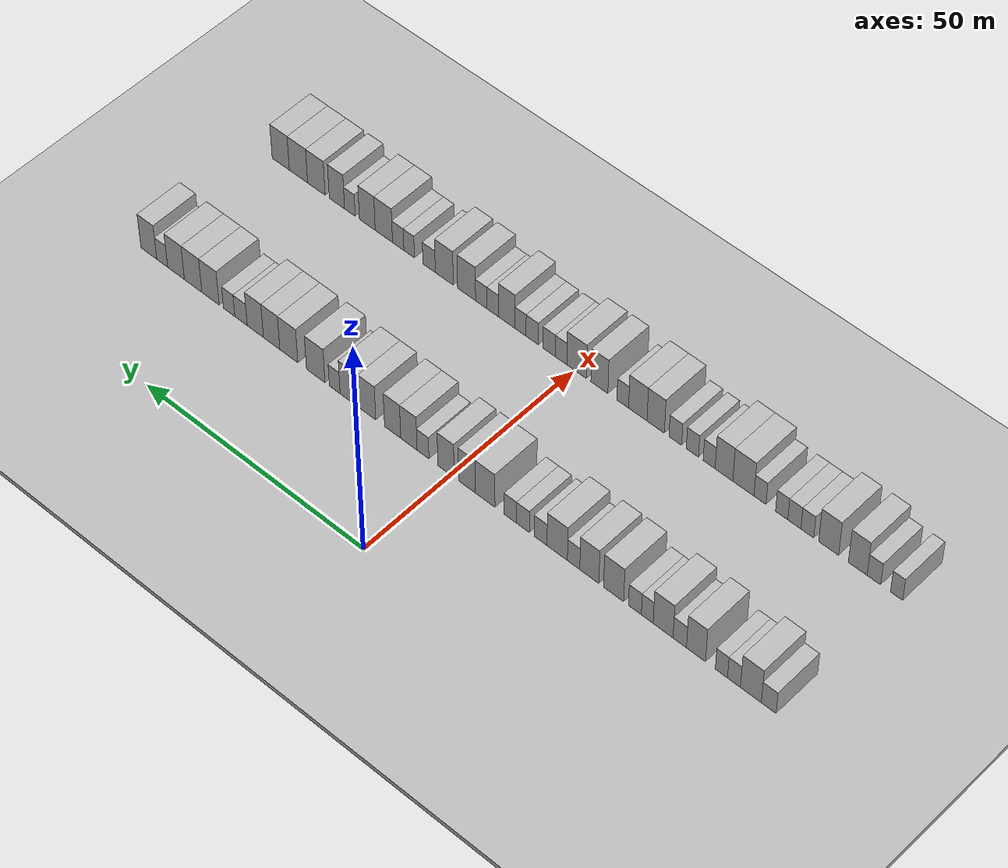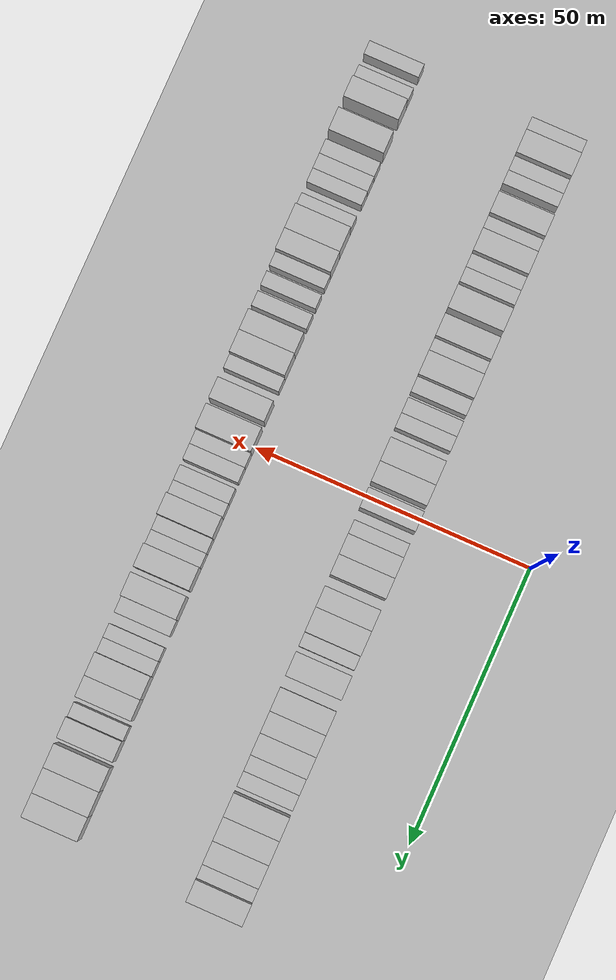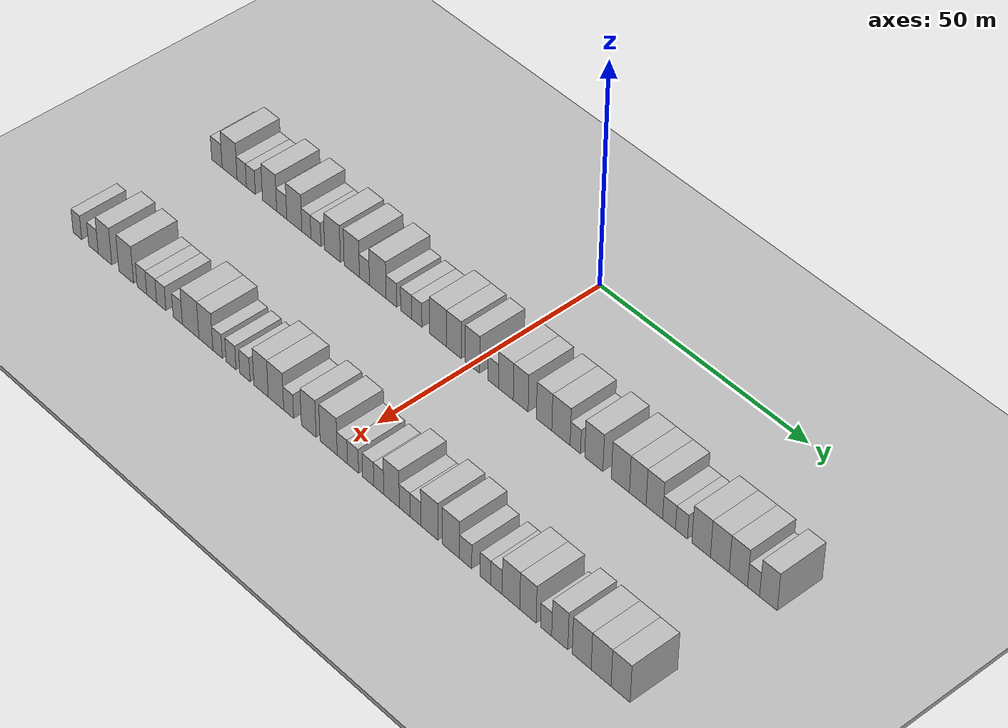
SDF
<sdf version="1.6">
 <world name="default">
  <include><name>ground_plane_1</name><uri>model://HANNAS_ground_plane</uri></include>
  <include>
   <name>ground_plane_2</name>
   <uri>model://HANNAS_ground_plane</uri>
   <pose>100 0 0  0 0 0</pose>
  </include>
  <model name="building_40">
   <static>1</static>
   <pose>25.0000 -67.4504 0 0.000000 0.000000 0.000000</pose>
   <link name="link">
    <pose>0 0 3.00 0 0 0</pose>
    <collision name="collision"><geometry><box><size>10.0000 2.9631 6.0000</size></box></geometry></collision>
    <visual name="visual">
     <cast_shadows>0</cast_shadows>
     <geometry><box><size>10.0000 2.9631 6.0000</size></box></geometry>
     <material>
      <script>
       <uri>model://HANNAS_wall/materials/scripts</uri>
       <uri>model://HANNAS_wall/materials/textures</uri>
       <name>vrc/HANNAS_wall</name>
      </script>
     </material>
    </visual>
   </link>
  </model>
  <model name="building_41">
   <static>1</static>
   <pose>25.0000 -63.8523 0 0.000000 0.000000 0.000000</pose>
   <link name="link">
    <pose>0 0 4.50 0 0 0</pose>
    <collision name="collision"><geometry><box><size>10.0000 4.2330 9.0000</size></box></geometry></collision>
    <visual name="visual">
     <cast_shadows>0</cast_shadows>
     <geometry><box><size>10.0000 4.2330 9.0000</size></box></geometry>
     <material>
      <script>
       <uri>model://HANNAS_wall/materials/scripts</uri>
       <uri>model://HANNAS_wall/materials/textures</uri>
       <name>vrc/HANNAS_wall</name>
      </script>
     </material>
    </visual>
   </link>
  </model>
  <model name="building_42">
   <static>1</static>
   <pose>25.0000 -60.4268 0 0.000000 0.000000 0.000000</pose>
   <link name="link">
    <pose>0 0 3.00 0 0 0</pose>
    <collision name="collision"><geometry><box><size>10.0000 2.6180 6.0000</size></box></geometry></collision>
    <visual name="visual">
     <cast_shadows>0</cast_shadows>
     <geometry><box><size>10.0000 2.6180 6.0000</size></box></geometry>
     <material>
      <script>
       <uri>model://HANNAS_wall/materials/scripts</uri>
       <uri>model://HANNAS_wall/materials/textures</uri>
       <name>vrc/HANNAS_wall</name>
      </script>
     </material>
    </visual>
   </link>
  </model>
  <model name="building_43">
   <static>1</static>
   <pose>25.0000 -57.8759 0 0.000000 0.000000 0.000000</pose>
   <link name="link">
    <pose>0 0 3.00 0 0 0</pose>
    <collision name="collision"><geometry><box><size>10.0000 2.4838 6.0000</size></box></geometry></collision>
    <visual name="visual">
     <cast_shadows>0</cast_shadows>
     <geometry><box><size>10.0000 2.4838 6.0000</size></box></geometry>
     <material>
      <script>
       <uri>model://HANNAS_wall/materials/scripts</uri>
       <uri>model://HANNAS_wall/materials/textures</uri>
       <name>vrc/HANNAS_wall</name>
      </script>
     </material>
    </visual>
   </link>
  </model>
  <model name="building_44">
   <static>1</static>
   <pose>25.0000 -52.6735 0 0.000000 0.000000 0.000000</pose>
   <link name="link">
    <pose>0 0 4.50 0 0 0</pose>
    <collision name="collision"><geometry><box><size>10.0000 3.9210 9.0000</size></box></geometry></collision>
    <visual name="visual">
     <cast_shadows>0</cast_shadows>
     <geometry><box><size>10.0000 3.9210 9.0000</size></box></geometry>
     <material>
      <script>
       <uri>model://HANNAS_wall/materials/scripts</uri>
       <uri>model://HANNAS_wall/materials/textures</uri>
       <name>vrc/HANNAS_wall</name>
      </script>
     </material>
    </visual>
   </link>
  </model>
  <model name="building_45">
   <static>1</static>
   <pose>25.0000 -49.3237 0 0.000000 0.000000 0.000000</pose>
   <link name="link">
    <pose>0 0 3.00 0 0 0</pose>
    <collision name="collision"><geometry><box><size>10.0000 2.7787 6.0000</size></box></geometry></collision>
    <visual name="visual">
     <cast_shadows>0</cast_shadows>
     <geometry><box><size>10.0000 2.7787 6.0000</size></box></geometry>
     <material>
      <script>
       <uri>model://HANNAS_wall/materials/scripts</uri>
       <uri>model://HANNAS_wall/materials/textures</uri>
       <name>vrc/HANNAS_wall</name>
      </script>
     </material>
    </visual>
   </link>
  </model>
  <model name="building_46">
   <static>1</static>
   <pose>25.0000 -45.8711 0 0.000000 0.000000 0.000000</pose>
   <link name="link">
    <pose>0 0 4.50 0 0 0</pose>
    <collision name="collision"><geometry><box><size>10.0000 4.1265 9.0000</size></box></geometry></collision>
    <visual name="visual">
     <cast_shadows>0</cast_shadows>
     <geometry><box><size>10.0000 4.1265 9.0000</size></box></geometry>
     <material>
      <script>
       <uri>model://HANNAS_wall/materials/scripts</uri>
       <uri>model://HANNAS_wall/materials/textures</uri>
       <name>vrc/HANNAS_wall</name>
      </script>
     </material>
    </visual>
   </link>
  </model>
  <model name="building_47">
   <static>1</static>
   <pose>25.0000 -42.5730 0 0.000000 0.000000 0.000000</pose>
   <link name="link">
    <pose>0 0 3.00 0 0 0</pose>
    <collision name="collision"><geometry><box><size>10.0000 2.4697 6.0000</size></box></geometry></collision>
    <visual name="visual">
     <cast_shadows>0</cast_shadows>
     <geometry><box><size>10.0000 2.4697 6.0000</size></box></geometry>
     <material>
      <script>
       <uri>model://HANNAS_wall/materials/scripts</uri>
       <uri>model://HANNAS_wall/materials/textures</uri>
       <name>vrc/HANNAS_wall</name>
      </script>
     </material>
    </visual>
   </link>
  </model>
  <model name="building_48">
   <static>1</static>
   <pose>25.0000 -39.9853 0 0.000000 0.000000 0.000000</pose>
   <link name="link">
    <pose>0 0 3.00 0 0 0</pose>
    <collision name="collision"><geometry><box><size>10.0000 2.7059 6.0000</size></box></geometry></collision>
    <visual name="visual">
     <cast_shadows>0</cast_shadows>
     <geometry><box><size>10.0000 2.7059 6.0000</size></box></geometry>
     <material>
      <script>
       <uri>model://HANNAS_wall/materials/scripts</uri>
       <uri>model://HANNAS_wall/materials/textures</uri>
       <name>vrc/HANNAS_wall</name>
      </script>
     </material>
    </visual>
   </link>
  </model>
  <model name="building_49">
   <static>1</static>
   <pose>25.0000 -35.5125 0 0.000000 0.000000 0.000000</pose>
   <link name="link">
    <pose>0 0 4.50 0 0 0</pose>
    <collision name="collision"><geometry><box><size>10.0000 4.2397 9.0000</size></box></geometry></collision>
    <visual name="visual">
     <cast_shadows>0</cast_shadows>
     <geometry><box><size>10.0000 4.2397 9.0000</size></box></geometry>
     <material>
      <script>
       <uri>model://HANNAS_wall/materials/scripts</uri>
       <uri>model://HANNAS_wall/materials/textures</uri>
       <name>vrc/HANNAS_wall</name>
      </script>
     </material>
    </visual>
   </link>
  </model>
  <model name="building_50">
   <static>1</static>
   <pose>25.0000 -30.3605 0 0.000000 0.000000 0.000000</pose>
   <link name="link">
    <pose>0 0 4.50 0 0 0</pose>
    <collision name="collision"><geometry><box><size>10.0000 4.0643 9.0000</size></box></geometry></collision>
    <visual name="visual">
     <cast_shadows>0</cast_shadows>
     <geometry><box><size>10.0000 4.0643 9.0000</size></box></geometry>
     <material>
      <script>
       <uri>model://HANNAS_wall/materials/scripts</uri>
       <uri>model://HANNAS_wall/materials/textures</uri>
       <name>vrc/HANNAS_wall</name>
      </script>
     </material>
    </visual>
   </link>
  </model>
  <model name="building_51">
   <static>1</static>
   <pose>25.0000 -27.0049 0 0.000000 0.000000 0.000000</pose>
   <link name="link">
    <pose>0 0 3.00 0 0 0</pose>
    <collision name="collision"><geometry><box><size>10.0000 2.6468 6.0000</size></box></geometry></collision>
    <visual name="visual">
     <cast_shadows>0</cast_shadows>
     <geometry><box><size>10.0000 2.6468 6.0000</size></box></geometry>
     <material>
      <script>
       <uri>model://HANNAS_wall/materials/scripts</uri>
       <uri>model://HANNAS_wall/materials/textures</uri>
       <name>vrc/HANNAS_wall</name>
      </script>
     </material>
    </visual>
   </link>
  </model>
  <model name="building_52">
   <static>1</static>
   <pose>25.0000 -23.4937 0 0.000000 0.000000 0.000000</pose>
   <link name="link">
    <pose>0 0 4.50 0 0 0</pose>
    <collision name="collision"><geometry><box><size>10.0000 4.3756 9.0000</size></box></geometry></collision>
    <visual name="visual">
     <cast_shadows>0</cast_shadows>
     <geometry><box><size>10.0000 4.3756 9.0000</size></box></geometry>
     <material>
      <script>
       <uri>model://HANNAS_wall/materials/scripts</uri>
       <uri>model://HANNAS_wall/materials/textures</uri>
       <name>vrc/HANNAS_wall</name>
      </script>
     </material>
    </visual>
   </link>
  </model>
  <model name="building_53">
   <static>1</static>
   <pose>25.0000 -19.8978 0 0.000000 0.000000 0.000000</pose>
   <link name="link">
    <pose>0 0 3.00 0 0 0</pose>
    <collision name="collision"><geometry><box><size>10.0000 2.8161 6.0000</size></box></geometry></collision>
    <visual name="visual">
     <cast_shadows>0</cast_shadows>
     <geometry><box><size>10.0000 2.8161 6.0000</size></box></geometry>
     <material>
      <script>
       <uri>model://HANNAS_wall/materials/scripts</uri>
       <uri>model://HANNAS_wall/materials/textures</uri>
       <name>vrc/HANNAS_wall</name>
      </script>
     </material>
    </visual>
   </link>
  </model>
  <model name="building_54">
   <static>1</static>
   <pose>25.0000 -16.0875 0 0.000000 0.000000 0.000000</pose>
   <link name="link">
    <pose>0 0 3.00 0 0 0</pose>
    <collision name="collision"><geometry><box><size>10.0000 2.8045 6.0000</size></box></geometry></collision>
    <visual name="visual">
     <cast_shadows>0</cast_shadows>
     <geometry><box><size>10.0000 2.8045 6.0000</size></box></geometry>
     <material>
      <script>
       <uri>model://HANNAS_wall/materials/scripts</uri>
       <uri>model://HANNAS_wall/materials/textures</uri>
       <name>vrc/HANNAS_wall</name>
      </script>
     </material>
    </visual>
   </link>
  </model>
  <model name="building_55">
   <static>1</static>
   <pose>25.0000 -13.3362 0 0.000000 0.000000 0.000000</pose>
   <link name="link">
    <pose>0 0 3.00 0 0 0</pose>
    <collision name="collision"><geometry><box><size>10.0000 2.6982 6.0000</size></box></geometry></collision>
    <visual name="visual">
     <cast_shadows>0</cast_shadows>
     <geometry><box><size>10.0000 2.6982 6.0000</size></box></geometry>
     <material>
      <script>
       <uri>model://HANNAS_wall/materials/scripts</uri>
       <uri>model://HANNAS_wall/materials/textures</uri>
       <name>vrc/HANNAS_wall</name>
      </script>
     </material>
    </visual>
   </link>
  </model>
  <model name="building_56">
   <static>1</static>
   <pose>25.0000 -7.8339 0 0.000000 0.000000 0.000000</pose>
   <link name="link">
    <pose>0 0 4.50 0 0 0</pose>
    <collision name="collision"><geometry><box><size>10.0000 4.3064 9.0000</size></box></geometry></collision>
    <visual name="visual">
     <cast_shadows>0</cast_shadows>
     <geometry><box><size>10.0000 4.3064 9.0000</size></box></geometry>
     <material>
      <script>
       <uri>model://HANNAS_wall/materials/scripts</uri>
       <uri>model://HANNAS_wall/materials/textures</uri>
       <name>vrc/HANNAS_wall</name>
      </script>
     </material>
    </visual>
   </link>
  </model>
  <model name="building_57">
   <static>1</static>
   <pose>25.0000 -3.8198 0 0.000000 0.000000 0.000000</pose>
   <link name="link">
    <pose>0 0 4.50 0 0 0</pose>
    <collision name="collision"><geometry><box><size>10.0000 3.7216 9.0000</size></box></geometry></collision>
    <visual name="visual">
     <cast_shadows>0</cast_shadows>
     <geometry><box><size>10.0000 3.7216 9.0000</size></box></geometry>
     <material>
      <script>
       <uri>model://HANNAS_wall/materials/scripts</uri>
       <uri>model://HANNAS_wall/materials/textures</uri>
       <name>vrc/HANNAS_wall</name>
      </script>
     </material>
    </visual>
   </link>
  </model>
  <model name="building_58">
   <static>1</static>
   <pose>25.0000 0.8615 0 0.000000 0.000000 0.000000</pose>
   <link name="link">
    <pose>0 0 4.50 0 0 0</pose>
    <collision name="collision"><geometry><box><size>10.0000 3.6410 9.0000</size></box></geometry></collision>
    <visual name="visual">
     <cast_shadows>0</cast_shadows>
     <geometry><box><size>10.0000 3.6410 9.0000</size></box></geometry>
     <material>
      <script>
       <uri>model://HANNAS_wall/materials/scripts</uri>
       <uri>model://HANNAS_wall/materials/textures</uri>
       <name>vrc/HANNAS_wall</name>
      </script>
     </material>
    </visual>
   </link>
  </model>
  <model name="building_59">
   <static>1</static>
   <pose>25.0000 6.0188 0 0.000000 0.000000 0.000000</pose>
   <link name="link">
    <pose>0 0 3.00 0 0 0</pose>
    <collision name="collision"><geometry><box><size>10.0000 2.6737 6.0000</size></box></geometry></collision>
    <visual name="visual">
     <cast_shadows>0</cast_shadows>
     <geometry><box><size>10.0000 2.6737 6.0000</size></box></geometry>
     <material>
      <script>
       <uri>model://HANNAS_wall/materials/scripts</uri>
       <uri>model://HANNAS_wall/materials/textures</uri>
       <name>vrc/HANNAS_wall</name>
      </script>
     </material>
    </visual>
   </link>
  </model>
  <model name="building_60">
   <static>1</static>
   <pose>25.0000 9.2011 0 0.000000 0.000000 0.000000</pose>
   <link name="link">
    <pose>0 0 4.50 0 0 0</pose>
    <collision name="collision"><geometry><box><size>10.0000 3.6910 9.0000</size></box></geometry></collision>
    <visual name="visual">
     <cast_shadows>0</cast_shadows>
     <geometry><box><size>10.0000 3.6910 9.0000</size></box></geometry>
     <material>
      <script>
       <uri>model://HANNAS_wall/materials/scripts</uri>
       <uri>model://HANNAS_wall/materials/textures</uri>
       <name>vrc/HANNAS_wall</name>
      </script>
     </material>
    </visual>
   </link>
  </model>
  <model name="building_61">
   <static>1</static>
   <pose>25.0000 12.8817 0 0.000000 0.000000 0.000000</pose>
   <link name="link">
    <pose>0 0 4.50 0 0 0</pose>
    <collision name="collision"><geometry><box><size>10.0000 3.6702 9.0000</size></box></geometry></collision>
    <visual name="visual">
     <cast_shadows>0</cast_shadows>
     <geometry><box><size>10.0000 3.6702 9.0000</size></box></geometry>
     <material>
      <script>
       <uri>model://HANNAS_wall/materials/scripts</uri>
       <uri>model://HANNAS_wall/materials/textures</uri>
       <name>vrc/HANNAS_wall</name>
      </script>
     </material>
    </visual>
   </link>
  </model>
  <model name="building_62">
   <static>1</static>
   <pose>25.0000 18.6023 0 0.000000 0.000000 0.000000</pose>
   <link name="link">
    <pose>0 0 4.50 0 0 0</pose>
    <collision name="collision"><geometry><box><size>10.0000 3.7709 9.0000</size></box></geometry></collision>
    <visual name="visual">
     <cast_shadows>0</cast_shadows>
     <geometry><box><size>10.0000 3.7709 9.0000</size></box></geometry>
     <material>
      <script>
       <uri>model://HANNAS_wall/materials/scripts</uri>
       <uri>model://HANNAS_wall/materials/textures</uri>
       <name>vrc/HANNAS_wall</name>
      </script>
     </material>
    </visual>
   </link>
  </model>
  <model name="building_63">
   <static>1</static>
   <pose>25.0000 22.7025 0 0.000000 0.000000 0.000000</pose>
   <link name="link">
    <pose>0 0 4.50 0 0 0</pose>
    <collision name="collision"><geometry><box><size>10.0000 4.4295 9.0000</size></box></geometry></collision>
    <visual name="visual">
     <cast_shadows>0</cast_shadows>
     <geometry><box><size>10.0000 4.4295 9.0000</size></box></geometry>
     <material>
      <script>
       <uri>model://HANNAS_wall/materials/scripts</uri>
       <uri>model://HANNAS_wall/materials/textures</uri>
       <name>vrc/HANNAS_wall</name>
      </script>
     </material>
    </visual>
   </link>
  </model>
  <model name="building_64">
   <static>1</static>
   <pose>25.0000 26.1662 0 0.000000 0.000000 0.000000</pose>
   <link name="link">
    <pose>0 0 3.00 0 0 0</pose>
    <collision name="collision"><geometry><box><size>10.0000 2.4980 6.0000</size></box></geometry></collision>
    <visual name="visual">
     <cast_shadows>0</cast_shadows>
     <geometry><box><size>10.0000 2.4980 6.0000</size></box></geometry>
     <material>
      <script>
       <uri>model://HANNAS_wall/materials/scripts</uri>
       <uri>model://HANNAS_wall/materials/textures</uri>
       <name>vrc/HANNAS_wall</name>
      </script>
     </material>
    </visual>
   </link>
  </model>
  <model name="building_65">
   <static>1</static>
   <pose>25.0000 30.5811 0 0.000000 0.000000 0.000000</pose>
   <link name="link">
    <pose>0 0 4.50 0 0 0</pose>
    <collision name="collision"><geometry><box><size>10.0000 4.3316 9.0000</size></box></geometry></collision>
    <visual name="visual">
     <cast_shadows>0</cast_shadows>
     <geometry><box><size>10.0000 4.3316 9.0000</size></box></geometry>
     <material>
      <script>
       <uri>model://HANNAS_wall/materials/scripts</uri>
       <uri>model://HANNAS_wall/materials/textures</uri>
       <name>vrc/HANNAS_wall</name>
      </script>
     </material>
    </visual>
   </link>
  </model>
  <model name="building_66">
   <static>1</static>
   <pose>25.0000 36.8752 0 0.000000 0.000000 0.000000</pose>
   <link name="link">
    <pose>0 0 4.50 0 0 0</pose>
    <collision name="collision"><geometry><box><size>10.0000 4.2566 9.0000</size></box></geometry></collision>
    <visual name="visual">
     <cast_shadows>0</cast_shadows>
     <geometry><box><size>10.0000 4.2566 9.0000</size></box></geometry>
     <material>
      <script>
       <uri>model://HANNAS_wall/materials/scripts</uri>
       <uri>model://HANNAS_wall/materials/textures</uri>
       <name>vrc/HANNAS_wall</name>
      </script>
     </material>
    </visual>
   </link>
  </model>
  <model name="building_67">
   <static>1</static>
   <pose>25.0000 40.9402 0 0.000000 0.000000 0.000000</pose>
   <link name="link">
    <pose>0 0 4.50 0 0 0</pose>
    <collision name="collision"><geometry><box><size>10.0000 3.8733 9.0000</size></box></geometry></collision>
    <visual name="visual">
     <cast_shadows>0</cast_shadows>
     <geometry><box><size>10.0000 3.8733 9.0000</size></box></geometry>
     <material>
      <script>
       <uri>model://HANNAS_wall/materials/scripts</uri>
       <uri>model://HANNAS_wall/materials/textures</uri>
       <name>vrc/HANNAS_wall</name>
      </script>
     </material>
    </visual>
   </link>
  </model>
  <model name="building_68">
   <static>1</static>
   <pose>25.0000 44.8084 0 0.000000 0.000000 0.000000</pose>
   <link name="link">
    <pose>0 0 4.50 0 0 0</pose>
    <collision name="collision"><geometry><box><size>10.0000 3.8630 9.0000</size></box></geometry></collision>
    <visual name="visual">
     <cast_shadows>0</cast_shadows>
     <geometry><box><size>10.0000 3.8630 9.0000</size></box></geometry>
     <material>
      <script>
       <uri>model://HANNAS_wall/materials/scripts</uri>
       <uri>model://HANNAS_wall/materials/textures</uri>
       <name>vrc/HANNAS_wall</name>
      </script>
     </material>
    </visual>
   </link>
  </model>
  <model name="building_69">
   <static>1</static>
   <pose>25.0000 48.2210 0 0.000000 0.000000 0.000000</pose>
   <link name="link">
    <pose>0 0 3.00 0 0 0</pose>
    <collision name="collision"><geometry><box><size>10.0000 2.9623 6.0000</size></box></geometry></collision>
    <visual name="visual">
     <cast_shadows>0</cast_shadows>
     <geometry><box><size>10.0000 2.9623 6.0000</size></box></geometry>
     <material>
      <script>
       <uri>model://HANNAS_wall/materials/scripts</uri>
       <uri>model://HANNAS_wall/materials/textures</uri>
       <name>vrc/HANNAS_wall</name>
      </script>
     </material>
    </visual>
   </link>
  </model>
  <model name="building_70">
   <static>1</static>
   <pose>25.0000 51.0767 0 0.000000 0.000000 0.000000</pose>
   <link name="link">
    <pose>0 0 3.00 0 0 0</pose>
    <collision name="collision"><geometry><box><size>10.0000 2.7492 6.0000</size></box></geometry></collision>
    <visual name="visual">
     <cast_shadows>0</cast_shadows>
     <geometry><box><size>10.0000 2.7492 6.0000</size></box></geometry>
     <material>
      <script>
       <uri>model://HANNAS_wall/materials/scripts</uri>
       <uri>model://HANNAS_wall/materials/textures</uri>
       <name>vrc/HANNAS_wall</name>
      </script>
     </material>
    </visual>
   </link>
  </model>
  <model name="building_71">
   <static>1</static>
   <pose>25.0000 55.5530 0 0.000000 0.000000 0.000000</pose>
   <link name="link">
    <pose>0 0 4.50 0 0 0</pose>
    <collision name="collision"><geometry><box><size>10.0000 4.2034 9.0000</size></box></geometry></collision>
    <visual name="visual">
     <cast_shadows>0</cast_shadows>
     <geometry><box><size>10.0000 4.2034 9.0000</size></box></geometry>
     <material>
      <script>
       <uri>model://HANNAS_wall/materials/scripts</uri>
       <uri>model://HANNAS_wall/materials/textures</uri>
       <name>vrc/HANNAS_wall</name>
      </script>
     </material>
    </visual>
   </link>
  </model>
  <model name="building_72">
   <static>1</static>
   <pose>25.0000 59.7783 0 0.000000 0.000000 0.000000</pose>
   <link name="link">
    <pose>0 0 4.50 0 0 0</pose>
    <collision name="collision"><geometry><box><size>10.0000 4.2473 9.0000</size></box></geometry></collision>
    <visual name="visual">
     <cast_shadows>0</cast_shadows>
     <geometry><box><size>10.0000 4.2473 9.0000</size></box></geometry>
     <material>
      <script>
       <uri>model://HANNAS_wall/materials/scripts</uri>
       <uri>model://HANNAS_wall/materials/textures</uri>
       <name>vrc/HANNAS_wall</name>
      </script>
     </material>
    </visual>
   </link>
  </model>
  <model name="building_73">
   <static>1</static>
   <pose>25.0000 63.9522 0 0.000000 0.000000 0.000000</pose>
   <link name="link">
    <pose>0 0 4.50 0 0 0</pose>
    <collision name="collision"><geometry><box><size>10.0000 4.1004 9.0000</size></box></geometry></collision>
    <visual name="visual">
     <cast_shadows>0</cast_shadows>
     <geometry><box><size>10.0000 4.1004 9.0000</size></box></geometry>
     <material>
      <script>
       <uri>model://HANNAS_wall/materials/scripts</uri>
       <uri>model://HANNAS_wall/materials/textures</uri>
       <name>vrc/HANNAS_wall</name>
      </script>
     </material>
    </visual>
   </link>
  </model>
  <model name="building_74">
   <static>1</static>
   <pose>25.0000 67.3389 0 0.000000 0.000000 0.000000</pose>
   <link name="link">
    <pose>0 0 3.00 0 0 0</pose>
    <collision name="collision"><geometry><box><size>10.0000 2.6730 6.0000</size></box></geometry></collision>
    <visual name="visual">
     <cast_shadows>0</cast_shadows>
     <geometry><box><size>10.0000 2.6730 6.0000</size></box></geometry>
     <material>
      <script>
       <uri>model://HANNAS_wall/materials/scripts</uri>
       <uri>model://HANNAS_wall/materials/textures</uri>
       <name>vrc/HANNAS_wall</name>
      </script>
     </material>
    </visual>
   </link>
  </model>
  <model name="building_75">
   <static>1</static>
   <pose>25.0000 70.6305 0 0.000000 0.000000 0.000000</pose>
   <link name="link">
    <pose>0 0 4.50 0 0 0</pose>
    <collision name="collision"><geometry><box><size>10.0000 3.9102 9.0000</size></box></geometry></collision>
    <visual name="visual">
     <cast_shadows>0</cast_shadows>
     <geometry><box><size>10.0000 3.9102 9.0000</size></box></geometry>
     <material>
      <script>
       <uri>model://HANNAS_wall/materials/scripts</uri>
       <uri>model://HANNAS_wall/materials/textures</uri>
       <name>vrc/HANNAS_wall</name>
      </script>
     </material>
    </visual>
   </link>
  </model>
  <model name="building_145">
   <static>1</static>
   <pose>55.0000 -68.5904 0 0.000000 0.000000 0.000000</pose>
   <link name="link">
    <pose>0 0 3.00 0 0 0</pose>
    <collision name="collision"><geometry><box><size>10.0000 2.4681 6.0000</size></box></geometry></collision>
    <visual name="visual">
     <cast_shadows>0</cast_shadows>
     <geometry><box><size>10.0000 2.4681 6.0000</size></box></geometry>
     <material>
      <script>
       <uri>model://HANNAS_wall/materials/scripts</uri>
       <uri>model://HANNAS_wall/materials/textures</uri>
       <name>vrc/HANNAS_wall</name>
      </script>
     </material>
    </visual>
   </link>
  </model>
  <model name="building_146">
   <static>1</static>
   <pose>55.0000 -63.9849 0 0.000000 0.000000 0.000000</pose>
   <link name="link">
    <pose>0 0 3.00 0 0 0</pose>
    <collision name="collision"><geometry><box><size>10.0000 2.7431 6.0000</size></box></geometry></collision>
    <visual name="visual">
     <cast_shadows>0</cast_shadows>
     <geometry><box><size>10.0000 2.7431 6.0000</size></box></geometry>
     <material>
      <script>
       <uri>model://HANNAS_wall/materials/scripts</uri>
       <uri>model://HANNAS_wall/materials/textures</uri>
       <name>vrc/HANNAS_wall</name>
      </script>
     </material>
    </visual>
   </link>
  </model>
  <model name="building_147">
   <static>1</static>
   <pose>55.0000 -60.6962 0 0.000000 0.000000 0.000000</pose>
   <link name="link">
    <pose>0 0 4.50 0 0 0</pose>
    <collision name="collision"><geometry><box><size>10.0000 3.8341 9.0000</size></box></geometry></collision>
    <visual name="visual">
     <cast_shadows>0</cast_shadows>
     <geometry><box><size>10.0000 3.8341 9.0000</size></box></geometry>
     <material>
      <script>
       <uri>model://HANNAS_wall/materials/scripts</uri>
       <uri>model://HANNAS_wall/materials/textures</uri>
       <name>vrc/HANNAS_wall</name>
      </script>
     </material>
    </visual>
   </link>
  </model>
  <model name="building_148">
   <static>1</static>
   <pose>55.0000 -54.7127 0 0.000000 0.000000 0.000000</pose>
   <link name="link">
    <pose>0 0 4.50 0 0 0</pose>
    <collision name="collision"><geometry><box><size>10.0000 4.1330 9.0000</size></box></geometry></collision>
    <visual name="visual">
     <cast_shadows>0</cast_shadows>
     <geometry><box><size>10.0000 4.1330 9.0000</size></box></geometry>
     <material>
      <script>
       <uri>model://HANNAS_wall/materials/scripts</uri>
       <uri>model://HANNAS_wall/materials/textures</uri>
       <name>vrc/HANNAS_wall</name>
      </script>
     </material>
    </visual>
   </link>
  </model>
  <model name="building_149">
   <static>1</static>
   <pose>55.0000 -50.3110 0 0.000000 0.000000 0.000000</pose>
   <link name="link">
    <pose>0 0 3.00 0 0 0</pose>
    <collision name="collision"><geometry><box><size>10.0000 2.6705 6.0000</size></box></geometry></collision>
    <visual name="visual">
     <cast_shadows>0</cast_shadows>
     <geometry><box><size>10.0000 2.6705 6.0000</size></box></geometry>
     <material>
      <script>
       <uri>model://HANNAS_wall/materials/scripts</uri>
       <uri>model://HANNAS_wall/materials/textures</uri>
       <name>vrc/HANNAS_wall</name>
      </script>
     </material>
    </visual>
   </link>
  </model>
  <model name="building_150">
   <static>1</static>
   <pose>55.0000 -47.6110 0 0.000000 0.000000 0.000000</pose>
   <link name="link">
    <pose>0 0 3.00 0 0 0</pose>
    <collision name="collision"><geometry><box><size>10.0000 2.7294 6.0000</size></box></geometry></collision>
    <visual name="visual">
     <cast_shadows>0</cast_shadows>
     <geometry><box><size>10.0000 2.7294 6.0000</size></box></geometry>
     <material>
      <script>
       <uri>model://HANNAS_wall/materials/scripts</uri>
       <uri>model://HANNAS_wall/materials/textures</uri>
       <name>vrc/HANNAS_wall</name>
      </script>
     </material>
    </visual>
   </link>
  </model>
  <model name="building_151">
   <static>1</static>
   <pose>55.0000 -44.9672 0 0.000000 0.000000 0.000000</pose>
   <link name="link">
    <pose>0 0 3.00 0 0 0</pose>
    <collision name="collision"><geometry><box><size>10.0000 2.5583 6.0000</size></box></geometry></collision>
    <visual name="visual">
     <cast_shadows>0</cast_shadows>
     <geometry><box><size>10.0000 2.5583 6.0000</size></box></geometry>
     <material>
      <script>
       <uri>model://HANNAS_wall/materials/scripts</uri>
       <uri>model://HANNAS_wall/materials/textures</uri>
       <name>vrc/HANNAS_wall</name>
      </script>
     </material>
    </visual>
   </link>
  </model>
  <model name="building_152">
   <static>1</static>
   <pose>55.0000 -40.4209 0 0.000000 0.000000 0.000000</pose>
   <link name="link">
    <pose>0 0 3.00 0 0 0</pose>
    <collision name="collision"><geometry><box><size>10.0000 2.5344 6.0000</size></box></geometry></collision>
    <visual name="visual">
     <cast_shadows>0</cast_shadows>
     <geometry><box><size>10.0000 2.5344 6.0000</size></box></geometry>
     <material>
      <script>
       <uri>model://HANNAS_wall/materials/scripts</uri>
       <uri>model://HANNAS_wall/materials/textures</uri>
       <name>vrc/HANNAS_wall</name>
      </script>
     </material>
    </visual>
   </link>
  </model>
  <model name="building_153">
   <static>1</static>
   <pose>55.0000 -36.9103 0 0.000000 0.000000 0.000000</pose>
   <link name="link">
    <pose>0 0 4.50 0 0 0</pose>
    <collision name="collision"><geometry><box><size>10.0000 4.4867 9.0000</size></box></geometry></collision>
    <visual name="visual">
     <cast_shadows>0</cast_shadows>
     <geometry><box><size>10.0000 4.4867 9.0000</size></box></geometry>
     <material>
      <script>
       <uri>model://HANNAS_wall/materials/scripts</uri>
       <uri>model://HANNAS_wall/materials/textures</uri>
       <name>vrc/HANNAS_wall</name>
      </script>
     </material>
    </visual>
   </link>
  </model>
  <model name="building_154">
   <static>1</static>
   <pose>55.0000 -32.7774 0 0.000000 0.000000 0.000000</pose>
   <link name="link">
    <pose>0 0 4.50 0 0 0</pose>
    <collision name="collision"><geometry><box><size>10.0000 3.7792 9.0000</size></box></geometry></collision>
    <visual name="visual">
     <cast_shadows>0</cast_shadows>
     <geometry><box><size>10.0000 3.7792 9.0000</size></box></geometry>
     <material>
      <script>
       <uri>model://HANNAS_wall/materials/scripts</uri>
       <uri>model://HANNAS_wall/materials/textures</uri>
       <name>vrc/HANNAS_wall</name>
      </script>
     </material>
    </visual>
   </link>
  </model>
  <model name="building_155">
   <static>1</static>
   <pose>55.0000 -29.6146 0 0.000000 0.000000 0.000000</pose>
   <link name="link">
    <pose>0 0 3.00 0 0 0</pose>
    <collision name="collision"><geometry><box><size>10.0000 2.5464 6.0000</size></box></geometry></collision>
    <visual name="visual">
     <cast_shadows>0</cast_shadows>
     <geometry><box><size>10.0000 2.5464 6.0000</size></box></geometry>
     <material>
      <script>
       <uri>model://HANNAS_wall/materials/scripts</uri>
       <uri>model://HANNAS_wall/materials/textures</uri>
       <name>vrc/HANNAS_wall</name>
      </script>
     </material>
    </visual>
   </link>
  </model>
  <model name="building_156">
   <static>1</static>
   <pose>55.0000 -26.0224 0 0.000000 0.000000 0.000000</pose>
   <link name="link">
    <pose>0 0 3.00 0 0 0</pose>
    <collision name="collision"><geometry><box><size>10.0000 2.6379 6.0000</size></box></geometry></collision>
    <visual name="visual">
     <cast_shadows>0</cast_shadows>
     <geometry><box><size>10.0000 2.6379 6.0000</size></box></geometry>
     <material>
      <script>
       <uri>model://HANNAS_wall/materials/scripts</uri>
       <uri>model://HANNAS_wall/materials/textures</uri>
       <name>vrc/HANNAS_wall</name>
      </script>
     </material>
    </visual>
   </link>
  </model>
  <model name="building_157">
   <static>1</static>
   <pose>55.0000 -22.3369 0 0.000000 0.000000 0.000000</pose>
   <link name="link">
    <pose>0 0 3.00 0 0 0</pose>
    <collision name="collision"><geometry><box><size>10.0000 2.7331 6.0000</size></box></geometry></collision>
    <visual name="visual">
     <cast_shadows>0</cast_shadows>
     <geometry><box><size>10.0000 2.7331 6.0000</size></box></geometry>
     <material>
      <script>
       <uri>model://HANNAS_wall/materials/scripts</uri>
       <uri>model://HANNAS_wall/materials/textures</uri>
       <name>vrc/HANNAS_wall</name>
      </script>
     </material>
    </visual>
   </link>
  </model>
  <model name="building_158">
   <static>1</static>
   <pose>55.0000 -18.0773 0 0.000000 0.000000 0.000000</pose>
   <link name="link">
    <pose>0 0 4.50 0 0 0</pose>
    <collision name="collision"><geometry><box><size>10.0000 3.7861 9.0000</size></box></geometry></collision>
    <visual name="visual">
     <cast_shadows>0</cast_shadows>
     <geometry><box><size>10.0000 3.7861 9.0000</size></box></geometry>
     <material>
      <script>
       <uri>model://HANNAS_wall/materials/scripts</uri>
       <uri>model://HANNAS_wall/materials/textures</uri>
       <name>vrc/HANNAS_wall</name>
      </script>
     </material>
    </visual>
   </link>
  </model>
  <model name="building_159">
   <static>1</static>
   <pose>55.0000 -14.1690 0 0.000000 0.000000 0.000000</pose>
   <link name="link">
    <pose>0 0 4.50 0 0 0</pose>
    <collision name="collision"><geometry><box><size>10.0000 4.0306 9.0000</size></box></geometry></collision>
    <visual name="visual">
     <cast_shadows>0</cast_shadows>
     <geometry><box><size>10.0000 4.0306 9.0000</size></box></geometry>
     <material>
      <script>
       <uri>model://HANNAS_wall/materials/scripts</uri>
       <uri>model://HANNAS_wall/materials/textures</uri>
       <name>vrc/HANNAS_wall</name>
      </script>
     </material>
    </visual>
   </link>
  </model>
  <model name="building_160">
   <static>1</static>
   <pose>55.0000 -10.8736 0 0.000000 0.000000 0.000000</pose>
   <link name="link">
    <pose>0 0 3.00 0 0 0</pose>
    <collision name="collision"><geometry><box><size>10.0000 2.5601 6.0000</size></box></geometry></collision>
    <visual name="visual">
     <cast_shadows>0</cast_shadows>
     <geometry><box><size>10.0000 2.5601 6.0000</size></box></geometry>
     <material>
      <script>
       <uri>model://HANNAS_wall/materials/scripts</uri>
       <uri>model://HANNAS_wall/materials/textures</uri>
       <name>vrc/HANNAS_wall</name>
      </script>
     </material>
    </visual>
   </link>
  </model>
  <model name="building_161">
   <static>1</static>
   <pose>55.0000 -5.7066 0 0.000000 0.000000 0.000000</pose>
   <link name="link">
    <pose>0 0 4.50 0 0 0</pose>
    <collision name="collision"><geometry><box><size>10.0000 3.7738 9.0000</size></box></geometry></collision>
    <visual name="visual">
     <cast_shadows>0</cast_shadows>
     <geometry><box><size>10.0000 3.7738 9.0000</size></box></geometry>
     <material>
      <script>
       <uri>model://HANNAS_wall/materials/scripts</uri>
       <uri>model://HANNAS_wall/materials/textures</uri>
       <name>vrc/HANNAS_wall</name>
      </script>
     </material>
    </visual>
   </link>
  </model>
  <model name="building_162">
   <static>1</static>
   <pose>55.0000 -0.6279 0 0.000000 0.000000 0.000000</pose>
   <link name="link">
    <pose>0 0 4.50 0 0 0</pose>
    <collision name="collision"><geometry><box><size>10.0000 4.3836 9.0000</size></box></geometry></collision>
    <visual name="visual">
     <cast_shadows>0</cast_shadows>
     <geometry><box><size>10.0000 4.3836 9.0000</size></box></geometry>
     <material>
      <script>
       <uri>model://HANNAS_wall/materials/scripts</uri>
       <uri>model://HANNAS_wall/materials/textures</uri>
       <name>vrc/HANNAS_wall</name>
      </script>
     </material>
    </visual>
   </link>
  </model>
  <model name="building_163">
   <static>1</static>
   <pose>55.0000 2.8578 0 0.000000 0.000000 0.000000</pose>
   <link name="link">
    <pose>0 0 3.00 0 0 0</pose>
    <collision name="collision"><geometry><box><size>10.0000 2.5879 6.0000</size></box></geometry></collision>
    <visual name="visual">
     <cast_shadows>0</cast_shadows>
     <geometry><box><size>10.0000 2.5879 6.0000</size></box></geometry>
     <material>
      <script>
       <uri>model://HANNAS_wall/materials/scripts</uri>
       <uri>model://HANNAS_wall/materials/textures</uri>
       <name>vrc/HANNAS_wall</name>
      </script>
     </material>
    </visual>
   </link>
  </model>
  <model name="building_164">
   <static>1</static>
   <pose>55.0000 5.5489 0 0.000000 0.000000 0.000000</pose>
   <link name="link">
    <pose>0 0 3.00 0 0 0</pose>
    <collision name="collision"><geometry><box><size>10.0000 2.7942 6.0000</size></box></geometry></collision>
    <visual name="visual">
     <cast_shadows>0</cast_shadows>
     <geometry><box><size>10.0000 2.7942 6.0000</size></box></geometry>
     <material>
      <script>
       <uri>model://HANNAS_wall/materials/scripts</uri>
       <uri>model://HANNAS_wall/materials/textures</uri>
       <name>vrc/HANNAS_wall</name>
      </script>
     </material>
    </visual>
   </link>
  </model>
  <model name="building_165">
   <static>1</static>
   <pose>55.0000 9.3407 0 0.000000 0.000000 0.000000</pose>
   <link name="link">
    <pose>0 0 3.00 0 0 0</pose>
    <collision name="collision"><geometry><box><size>10.0000 2.7893 6.0000</size></box></geometry></collision>
    <visual name="visual">
     <cast_shadows>0</cast_shadows>
     <geometry><box><size>10.0000 2.7893 6.0000</size></box></geometry>
     <material>
      <script>
       <uri>model://HANNAS_wall/materials/scripts</uri>
       <uri>model://HANNAS_wall/materials/textures</uri>
       <name>vrc/HANNAS_wall</name>
      </script>
     </material>
    </visual>
   </link>
  </model>
  <model name="building_166">
   <static>1</static>
   <pose>55.0000 11.9736 0 0.000000 0.000000 0.000000</pose>
   <link name="link">
    <pose>0 0 3.00 0 0 0</pose>
    <collision name="collision"><geometry><box><size>10.0000 2.4766 6.0000</size></box></geometry></collision>
    <visual name="visual">
     <cast_shadows>0</cast_shadows>
     <geometry><box><size>10.0000 2.4766 6.0000</size></box></geometry>
     <material>
      <script>
       <uri>model://HANNAS_wall/materials/scripts</uri>
       <uri>model://HANNAS_wall/materials/textures</uri>
       <name>vrc/HANNAS_wall</name>
      </script>
     </material>
    </visual>
   </link>
  </model>
  <model name="building_167">
   <static>1</static>
   <pose>55.0000 15.1382 0 0.000000 0.000000 0.000000</pose>
   <link name="link">
    <pose>0 0 4.50 0 0 0</pose>
    <collision name="collision"><geometry><box><size>10.0000 3.8526 9.0000</size></box></geometry></collision>
    <visual name="visual">
     <cast_shadows>0</cast_shadows>
     <geometry><box><size>10.0000 3.8526 9.0000</size></box></geometry>
     <material>
      <script>
       <uri>model://HANNAS_wall/materials/scripts</uri>
       <uri>model://HANNAS_wall/materials/textures</uri>
       <name>vrc/HANNAS_wall</name>
      </script>
     </material>
    </visual>
   </link>
  </model>
  <model name="building_168">
   <static>1</static>
   <pose>55.0000 18.3818 0 0.000000 0.000000 0.000000</pose>
   <link name="link">
    <pose>0 0 3.00 0 0 0</pose>
    <collision name="collision"><geometry><box><size>10.0000 2.6346 6.0000</size></box></geometry></collision>
    <visual name="visual">
     <cast_shadows>0</cast_shadows>
     <geometry><box><size>10.0000 2.6346 6.0000</size></box></geometry>
     <material>
      <script>
       <uri>model://HANNAS_wall/materials/scripts</uri>
       <uri>model://HANNAS_wall/materials/textures</uri>
       <name>vrc/HANNAS_wall</name>
      </script>
     </material>
    </visual>
   </link>
  </model>
  <model name="building_169">
   <static>1</static>
   <pose>55.0000 21.0017 0 0.000000 0.000000 0.000000</pose>
   <link name="link">
    <pose>0 0 3.00 0 0 0</pose>
    <collision name="collision"><geometry><box><size>10.0000 2.6052 6.0000</size></box></geometry></collision>
    <visual name="visual">
     <cast_shadows>0</cast_shadows>
     <geometry><box><size>10.0000 2.6052 6.0000</size></box></geometry>
     <material>
      <script>
       <uri>model://HANNAS_wall/materials/scripts</uri>
       <uri>model://HANNAS_wall/materials/textures</uri>
       <name>vrc/HANNAS_wall</name>
      </script>
     </material>
    </visual>
   </link>
  </model>
  <model name="building_170">
   <static>1</static>
   <pose>55.0000 24.3908 0 0.000000 0.000000 0.000000</pose>
   <link name="link">
    <pose>0 0 4.50 0 0 0</pose>
    <collision name="collision"><geometry><box><size>10.0000 4.1730 9.0000</size></box></geometry></collision>
    <visual name="visual">
     <cast_shadows>0</cast_shadows>
     <geometry><box><size>10.0000 4.1730 9.0000</size></box></geometry>
     <material>
      <script>
       <uri>model://HANNAS_wall/materials/scripts</uri>
       <uri>model://HANNAS_wall/materials/textures</uri>
       <name>vrc/HANNAS_wall</name>
      </script>
     </material>
    </visual>
   </link>
  </model>
  <model name="building_171">
   <static>1</static>
   <pose>55.0000 29.5777 0 0.000000 0.000000 0.000000</pose>
   <link name="link">
    <pose>0 0 4.50 0 0 0</pose>
    <collision name="collision"><geometry><box><size>10.0000 4.2008 9.0000</size></box></geometry></collision>
    <visual name="visual">
     <cast_shadows>0</cast_shadows>
     <geometry><box><size>10.0000 4.2008 9.0000</size></box></geometry>
     <material>
      <script>
       <uri>model://HANNAS_wall/materials/scripts</uri>
       <uri>model://HANNAS_wall/materials/textures</uri>
       <name>vrc/HANNAS_wall</name>
      </script>
     </material>
    </visual>
   </link>
  </model>
  <model name="building_172">
   <static>1</static>
   <pose>55.0000 33.1347 0 0.000000 0.000000 0.000000</pose>
   <link name="link">
    <pose>0 0 3.00 0 0 0</pose>
    <collision name="collision"><geometry><box><size>10.0000 2.9131 6.0000</size></box></geometry></collision>
    <visual name="visual">
     <cast_shadows>0</cast_shadows>
     <geometry><box><size>10.0000 2.9131 6.0000</size></box></geometry>
     <material>
      <script>
       <uri>model://HANNAS_wall/materials/scripts</uri>
       <uri>model://HANNAS_wall/materials/textures</uri>
       <name>vrc/HANNAS_wall</name>
      </script>
     </material>
    </visual>
   </link>
  </model>
  <model name="building_173">
   <static>1</static>
   <pose>55.0000 37.8323 0 0.000000 0.000000 0.000000</pose>
   <link name="link">
    <pose>0 0 3.00 0 0 0</pose>
    <collision name="collision"><geometry><box><size>10.0000 2.4821 6.0000</size></box></geometry></collision>
    <visual name="visual">
     <cast_shadows>0</cast_shadows>
     <geometry><box><size>10.0000 2.4821 6.0000</size></box></geometry>
     <material>
      <script>
       <uri>model://HANNAS_wall/materials/scripts</uri>
       <uri>model://HANNAS_wall/materials/textures</uri>
       <name>vrc/HANNAS_wall</name>
      </script>
     </material>
    </visual>
   </link>
  </model>
  <model name="building_174">
   <static>1</static>
   <pose>55.0000 40.4239 0 0.000000 0.000000 0.000000</pose>
   <link name="link">
    <pose>0 0 3.00 0 0 0</pose>
    <collision name="collision"><geometry><box><size>10.0000 2.7012 6.0000</size></box></geometry></collision>
    <visual name="visual">
     <cast_shadows>0</cast_shadows>
     <geometry><box><size>10.0000 2.7012 6.0000</size></box></geometry>
     <material>
      <script>
       <uri>model://HANNAS_wall/materials/scripts</uri>
       <uri>model://HANNAS_wall/materials/textures</uri>
       <name>vrc/HANNAS_wall</name>
      </script>
     </material>
    </visual>
   </link>
  </model>
  <model name="building_175">
   <static>1</static>
   <pose>55.0000 43.8372 0 0.000000 0.000000 0.000000</pose>
   <link name="link">
    <pose>0 0 4.50 0 0 0</pose>
    <collision name="collision"><geometry><box><size>10.0000 4.1255 9.0000</size></box></geometry></collision>
    <visual name="visual">
     <cast_shadows>0</cast_shadows>
     <geometry><box><size>10.0000 4.1255 9.0000</size></box></geometry>
     <material>
      <script>
       <uri>model://HANNAS_wall/materials/scripts</uri>
       <uri>model://HANNAS_wall/materials/textures</uri>
       <name>vrc/HANNAS_wall</name>
      </script>
     </material>
    </visual>
   </link>
  </model>
  <model name="building_176">
   <static>1</static>
   <pose>55.0000 47.7902 0 0.000000 0.000000 0.000000</pose>
   <link name="link">
    <pose>0 0 4.50 0 0 0</pose>
    <collision name="collision"><geometry><box><size>10.0000 3.7805 9.0000</size></box></geometry></collision>
    <visual name="visual">
     <cast_shadows>0</cast_shadows>
     <geometry><box><size>10.0000 3.7805 9.0000</size></box></geometry>
     <material>
      <script>
       <uri>model://HANNAS_wall/materials/scripts</uri>
       <uri>model://HANNAS_wall/materials/textures</uri>
       <name>vrc/HANNAS_wall</name>
      </script>
     </material>
    </visual>
   </link>
  </model>
  <model name="building_177">
   <static>1</static>
   <pose>55.0000 51.9703 0 0.000000 0.000000 0.000000</pose>
   <link name="link">
    <pose>0 0 3.00 0 0 0</pose>
    <collision name="collision"><geometry><box><size>10.0000 2.5796 6.0000</size></box></geometry></collision>
    <visual name="visual">
     <cast_shadows>0</cast_shadows>
     <geometry><box><size>10.0000 2.5796 6.0000</size></box></geometry>
     <material>
      <script>
       <uri>model://HANNAS_wall/materials/scripts</uri>
       <uri>model://HANNAS_wall/materials/textures</uri>
       <name>vrc/HANNAS_wall</name>
      </script>
     </material>
    </visual>
   </link>
  </model>
  <model name="building_178">
   <static>1</static>
   <pose>55.0000 55.1082 0 0.000000 0.000000 0.000000</pose>
   <link name="link">
    <pose>0 0 4.50 0 0 0</pose>
    <collision name="collision"><geometry><box><size>10.0000 3.6964 9.0000</size></box></geometry></collision>
    <visual name="visual">
     <cast_shadows>0</cast_shadows>
     <geometry><box><size>10.0000 3.6964 9.0000</size></box></geometry>
     <material>
      <script>
       <uri>model://HANNAS_wall/materials/scripts</uri>
       <uri>model://HANNAS_wall/materials/textures</uri>
       <name>vrc/HANNAS_wall</name>
      </script>
     </material>
    </visual>
   </link>
  </model>
  <model name="building_179">
   <static>1</static>
   <pose>55.0000 60.0927 0 0.000000 0.000000 0.000000</pose>
   <link name="link">
    <pose>0 0 4.50 0 0 0</pose>
    <collision name="collision"><geometry><box><size>10.0000 4.2725 9.0000</size></box></geometry></collision>
    <visual name="visual">
     <cast_shadows>0</cast_shadows>
     <geometry><box><size>10.0000 4.2725 9.0000</size></box></geometry>
     <material>
      <script>
       <uri>model://HANNAS_wall/materials/scripts</uri>
       <uri>model://HANNAS_wall/materials/textures</uri>
       <name>vrc/HANNAS_wall</name>
      </script>
     </material>
    </visual>
   </link>
  </model>
  <model name="building_180">
   <static>1</static>
   <pose>55.0000 64.4654 0 0.000000 0.000000 0.000000</pose>
   <link name="link">
    <pose>0 0 4.50 0 0 0</pose>
    <collision name="collision"><geometry><box><size>10.0000 4.4729 9.0000</size></box></geometry></collision>
    <visual name="visual">
     <cast_shadows>0</cast_shadows>
     <geometry><box><size>10.0000 4.4729 9.0000</size></box></geometry>
     <material>
      <script>
       <uri>model://HANNAS_wall/materials/scripts</uri>
       <uri>model://HANNAS_wall/materials/textures</uri>
       <name>vrc/HANNAS_wall</name>
      </script>
     </material>
    </visual>
   </link>
  </model>
  <model name="building_181">
   <static>1</static>
   <pose>55.0000 68.8243 0 0.000000 0.000000 0.000000</pose>
   <link name="link">
    <pose>0 0 4.50 0 0 0</pose>
    <collision name="collision"><geometry><box><size>10.0000 4.2448 9.0000</size></box></geometry></collision>
    <visual name="visual">
     <cast_shadows>0</cast_shadows>
     <geometry><box><size>10.0000 4.2448 9.0000</size></box></geometry>
     <material>
      <script>
       <uri>model://HANNAS_wall/materials/scripts</uri>
       <uri>model://HANNAS_wall/materials/textures</uri>
       <name>vrc/HANNAS_wall</name>
      </script>
     </material>
    </visual>
   </link>
  </model>
 </world>
</sdf>
